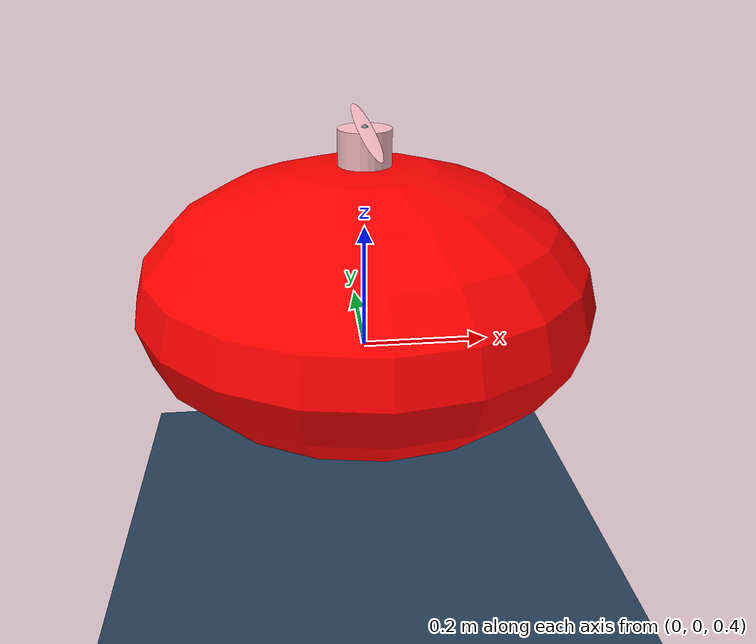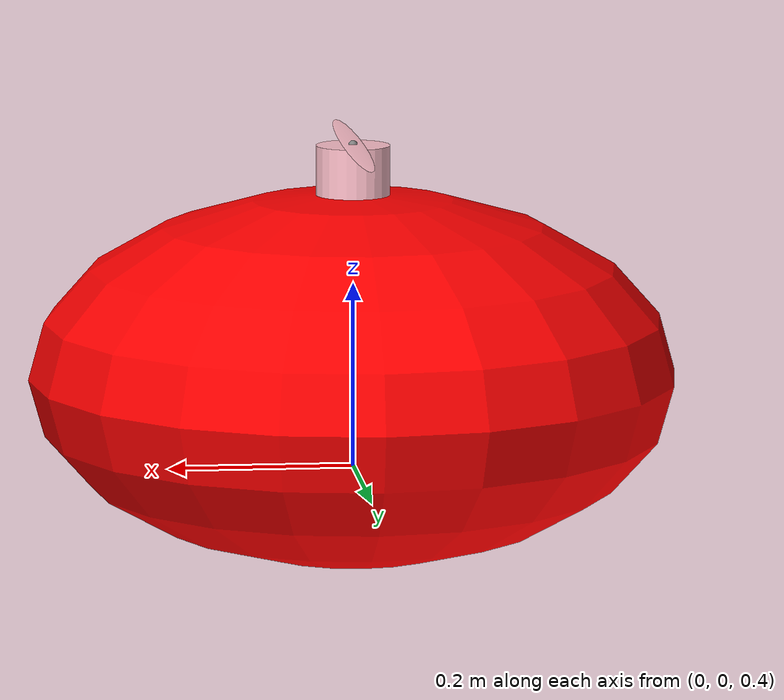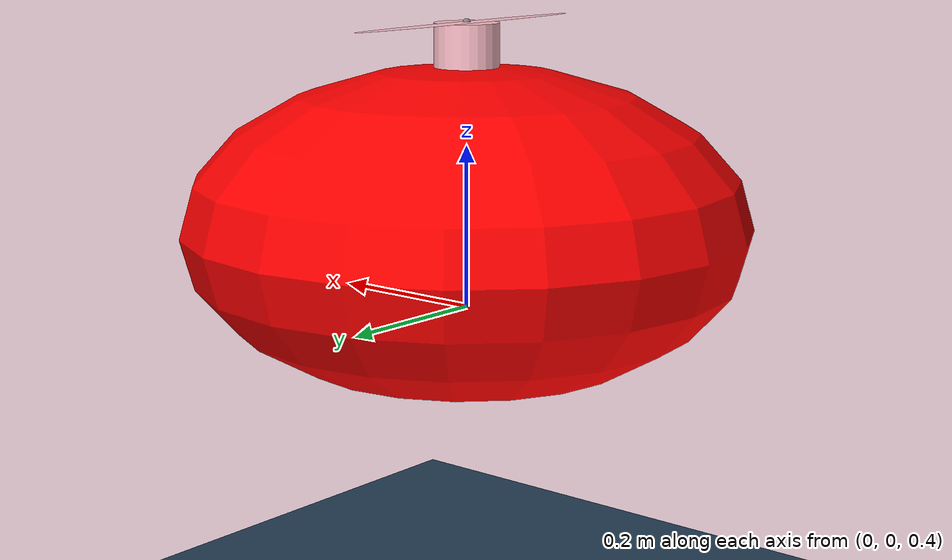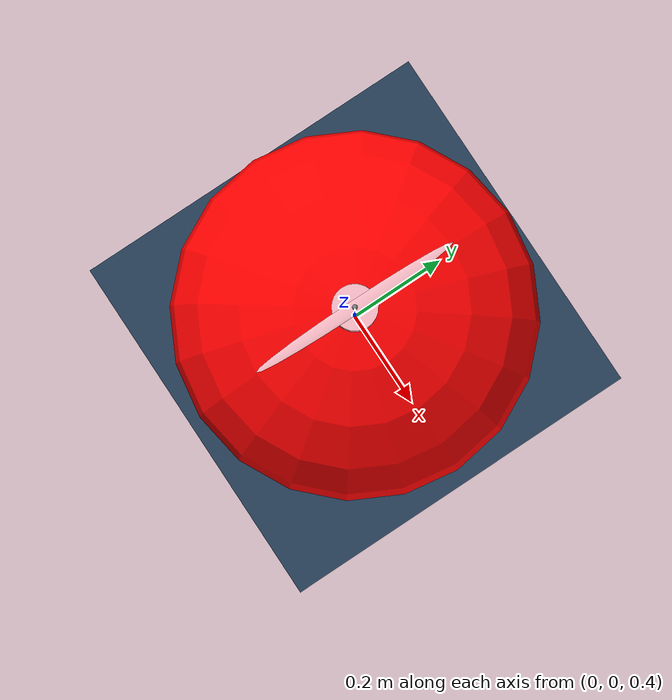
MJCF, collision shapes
<mujoco>
  <compiler autolimits="true" assetdir="assets"/>
  <statistic center="0 0 0.1" extent="0.6" meansize=".05"/>
  <option gravity="0 0 -9.8" viscosity="0.01" wind="2.5 0.2 0.5" />

  <default>
    <motor ctrlrange="0 13"/>
    <default class="x2">
      <geom mass="0"/>
      <mesh scale="0.01 0.01 0.01"/>
      <default class="visual">
        <geom group="2" type="mesh" contype="0" conaffinity="0"/>
      </default>
      <default class="collision">
        <geom group="3" type="box"/>
        <default class="rotor">
          <geom type="ellipsoid" size=".13 .13 .01"/>
        </default>
      </default>
      <site group="5"/>
    </default>
  </default>

  <visual>
    <headlight diffuse="0.6 0.6 0.6" ambient="0.3 0.3 0.3" specular="0 0 0"/>
    <rgba haze="0.15 0.25 0.35 1"/>
    <global azimuth="-20" elevation="-20" ellipsoidinertia="true"/>
  </visual>

  <asset>
    <texture type="skybox" builtin="gradient" rgb1="0.3 0.5 0.7" rgb2="0 0 0" width="512" height="30720"/>
    <texture type="2d" name="groundplane" builtin="checker" mark="edge" rgb1="0.2 0.3 0.4" rgb2="0.1 0.2 0.3"
      markrgb="0.8 0.8 0.8" width="300" height="300"/>
    <material name="groundplane" texture="groundplane" texuniform="true" texrepeat="5 5" reflectance="0.2"/>

          <mesh file="Gondola v9.obj" />
  </asset>

  <worldbody>
    <light pos="0 0 1.5" dir="0 0 -1" directional="true"/>
    <geom name="floor" size="0 0 0.05" type="plane" material="groundplane"/>
  </worldbody>

  <compiler angle="degree" coordinate="local" inertiafromgeom="true"/>

  <worldbody>

    <body name="blloon" pos="0 0 0.5" gravcomp="4" >
      <freejoint/>
      <geom name="mylar" type="ellipsoid" size="0.35 0.35 0.20" rgba="1 0 0 1" mass="0.25"/>
      <geom  mesh="Gondola v9" class="visual" quat="0 0 1 1"/>
      <site name="imu" pos="0 0 .02"/>
      <body name="m1" pos="0 0 0.2" >
        <geom name="body" type="cylinder" size="0.04 0.05 0.02" rgba="1 0.753 0.796 0.7" mass="0.8" />
        <body name="prop" pos="0 0 0.05" >
          <joint type="hinge" name="prop_joint" />
          <geom name="prop" type="ellipsoid" size="0.012 0.001 0.20" rgba="1 0.753 0.796 1" euler="90 0 0" />
        <site name="thrust1" pos="0 0 0" />
        </body>

    </body>
    </body>

  </worldbody>

  <actuator>
    <motor name="prop_joint" site="thrust1" gear="0 0 1 0 0 -.301" />
  </actuator>

   <sensor>
    <gyro name="body_gyro" site="imu"/>
    <accelerometer name="body_linacc" site="imu"/>
    <framequat name="body_quat" objtype="site" objname="imu"/>
  </sensor>

</mujoco>
